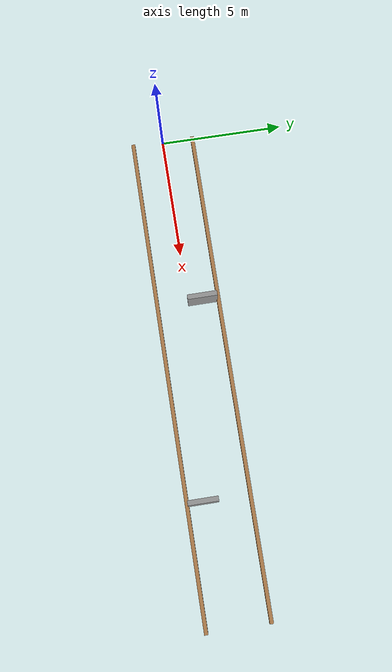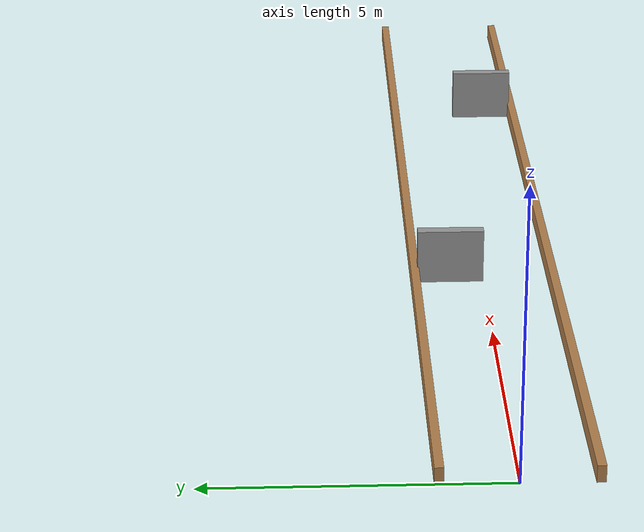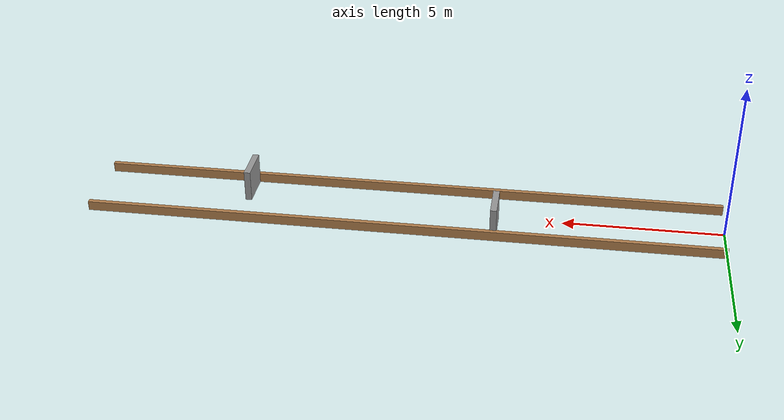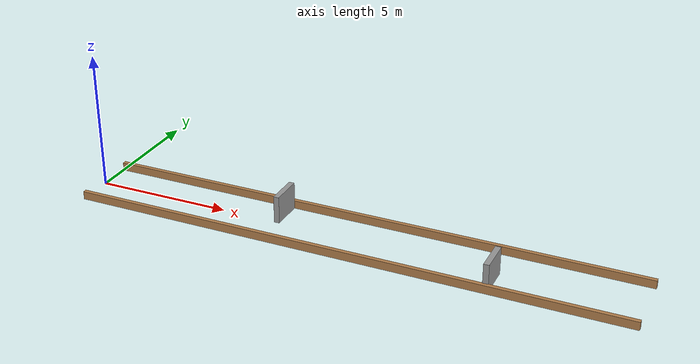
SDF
<sdf version="1.7">
 <world name="default">
  <scene>
   <grid>0</grid>
   <ambient>0.4 0.4 0.4 1</ambient>
   <background>0.7 0.7 0.7 1</background>
   <shadows>1</shadows>
  </scene>
  <light name="sun" type="directional">
   <pose>0 0 10 0 -0 0</pose>
   <diffuse>0.8 0.8 0.8 1</diffuse>
   <specular>0.2 0.2 0.2 1</specular>
   <attenuation>
    <range>1000</range>
    <constant>0.9</constant>
    <linear>0.01</linear>
    <quadratic>0.001</quadratic>
   </attenuation>
   <direction>-0.5 0.1 -0.9</direction>
   <spot><inner_angle>0</inner_angle><outer_angle>0</outer_angle><falloff>0</falloff></spot>
  </light>
  <model name="ground">
   <link name="body">
    <collision name="geom">
     <geometry><plane><normal>0 0 1</normal><size>1 1</size></plane></geometry>
     <surface><friction><ode><mu>100</mu><mu2>50</mu2></ode></friction></surface>
    </collision>
   </link>
   <static>1</static>
  </model>
  <gravity>0 0 -9.8</gravity>
  <magnetic_field>6e-06 2.3e-05 -4.2e-05</magnetic_field>
  <atmosphere type="adiabatic"/>
  <physics type="ode">
   <max_step_size>0.001</max_step_size>
   <real_time_factor>1</real_time_factor>
   <real_time_update_rate>1000</real_time_update_rate>
  </physics>
  <spherical_coordinates>
   <surface_model>EARTH_WGS84</surface_model>
   <latitude_deg>0</latitude_deg>
   <longitude_deg>0</longitude_deg>
   <elevation>0</elevation>
   <heading_deg>0</heading_deg>
  </spherical_coordinates>
  <model name="obstacles">
   <link name="Wall_1">
    <pose>11 -1.6 0 0 -0 0</pose>
    <inertial>
     <mass>1</mass>
     <inertia><ixx>1</ixx><ixy>0</ixy><ixz>0</ixz><iyy>1</iyy><iyz>0</iyz><izz>1</izz></inertia>
    </inertial>
    <visual name="Wall_1_Visual">
     <pose>0 0 0.15 0 -0 0</pose>
     <geometry><box><size>20.03 0.15 0.3</size></box></geometry>
     <material>
      <script><uri>file://media/materials/scripts/gazebo.material</uri><name>Gazebo/Wood</name></script>
      <ambient>1 0.765 0.306 1</ambient>
      <shader type="pixel"><normal_map>__default__</normal_map></shader>
      <diffuse>1 1 1 1</diffuse>
      <specular>0.2 0.2 0.2 1</specular>
      <emissive>0 0 0 1</emissive>
     </material>
     <meta><layer>0</layer></meta>
    </visual>
    <collision name="Wall_1_Collision">
     <pose>0 0 0.15 0 -0 0</pose>
     <geometry><box><size>10 0.15 0.3</size></box></geometry>
     <surface>
      <friction>
       <ode><mu>1</mu><mu2>1</mu2><fdir1>0 0 0</fdir1><slip1>0</slip1><slip2>0</slip2></ode>
       <torsional>
        <coefficient>1</coefficient>
        <patch_radius>0</patch_radius>
        <surface_radius>0</surface_radius>
        <use_patch_radius>1</use_patch_radius>
        <ode><slip>0</slip></ode>
       </torsional>
      </friction>
      <bounce><restitution_coefficient>0</restitution_coefficient><threshold>1e+06</threshold></bounce>
      <contact>
       <collide_without_contact>0</collide_without_contact>
       <collide_without_contact_bitmask>1</collide_without_contact_bitmask>
       <collide_bitmask>1</collide_bitmask>
       <ode>
        <soft_cfm>0</soft_cfm>
        <soft_erp>0.2</soft_erp>
        <kp>1e+13</kp>
        <kd>1</kd>
        <max_vel>0.01</max_vel>
        <min_depth>0</min_depth>
       </ode>
       <bullet>
        <split_impulse>1</split_impulse>
        <split_impulse_penetration_threshold>-0.01</split_impulse_penetration_threshold>
        <soft_cfm>0</soft_cfm>
        <soft_erp>0.2</soft_erp>
        <kp>1e+13</kp>
        <kd>1</kd>
       </bullet>
      </contact>
     </surface>
    </collision>
   </link>
   <link name="Wall_1_clone">
    <pose>11 0.9 0 0 -0 0</pose>
    <inertial>
     <mass>1</mass>
     <inertia><ixx>1</ixx><ixy>0</ixy><ixz>0</ixz><iyy>1</iyy><iyz>0</iyz><izz>1</izz></inertia>
    </inertial>
    <visual name="Wall_1_Visual">
     <pose>0 0 0.15 0 -0 0</pose>
     <geometry><box><size>20 0.15 0.3</size></box></geometry>
     <material>
      <script><uri>file://media/materials/scripts/gazebo.material</uri><name>Gazebo/Wood</name></script>
      <ambient>1 0.765 0.306 1</ambient>
      <shader type="pixel"><normal_map>__default__</normal_map></shader>
      <diffuse>1 1 1 1</diffuse>
      <specular>0.2 0.2 0.2 1</specular>
      <emissive>0 0 0 1</emissive>
     </material>
     <meta><layer>0</layer></meta>
    </visual>
    <collision name="Wall_1_Collision">
     <pose>0 0 0.15 0 -0 0</pose>
     <geometry><box><size>10 0.15 0.3</size></box></geometry>
     <surface>
      <friction>
       <ode><mu>1</mu><mu2>1</mu2><fdir1>0 0 0</fdir1><slip1>0</slip1><slip2>0</slip2></ode>
       <torsional>
        <coefficient>1</coefficient>
        <patch_radius>0</patch_radius>
        <surface_radius>0</surface_radius>
        <use_patch_radius>1</use_patch_radius>
        <ode><slip>0</slip></ode>
       </torsional>
      </friction>
      <bounce><restitution_coefficient>0</restitution_coefficient><threshold>1e+06</threshold></bounce>
      <contact>
       <collide_without_contact>0</collide_without_contact>
       <collide_without_contact_bitmask>1</collide_without_contact_bitmask>
       <collide_bitmask>1</collide_bitmask>
       <ode>
        <soft_cfm>0</soft_cfm>
        <soft_erp>0.2</soft_erp>
        <kp>1e+13</kp>
        <kd>1</kd>
        <max_vel>0.01</max_vel>
        <min_depth>0</min_depth>
       </ode>
       <bullet>
        <split_impulse>1</split_impulse>
        <split_impulse_penetration_threshold>-0.01</split_impulse_penetration_threshold>
        <soft_cfm>0</soft_cfm>
        <soft_erp>0.2</soft_erp>
        <kp>1e+13</kp>
        <kd>1</kd>
       </bullet>
      </contact>
     </surface>
    </collision>
   </link>
   <link name="link_0">
    <inertial>
     <mass>1</mass>
     <inertia>
      <ixx>0.166667</ixx>
      <ixy>0</ixy>
      <ixz>0</ixz>
      <iyy>0.166667</iyy>
      <iyz>0</iyz>
      <izz>0.166667</izz>
     </inertia>
    </inertial>
    <pose>8.1 0.25 0.5 0 -0 0</pose>
    <visual name="visual">
     <geometry><box><size>0.2 1.2 1</size></box></geometry>
     <material>
      <lighting>1</lighting>
      <script><uri>file://media/materials/scripts/gazebo.material</uri><name>Gazebo/Grey</name></script>
      <shader type="pixel"><normal_map>__default__</normal_map></shader>
      <ambient>0.3 0.3 0.3 1</ambient>
      <diffuse>0.7 0.7 0.7 1</diffuse>
      <specular>0.01 0.01 0.01 1</specular>
      <emissive>0 0 0 1</emissive>
     </material>
    </visual>
    <collision name="collision">
     <geometry><box><size>1 1 1</size></box></geometry>
     <surface>
      <friction>
       <ode><mu>1</mu><mu2>1</mu2><fdir1>0 0 0</fdir1><slip1>0</slip1><slip2>0</slip2></ode>
       <torsional>
        <coefficient>1</coefficient>
        <patch_radius>0</patch_radius>
        <surface_radius>0</surface_radius>
        <use_patch_radius>1</use_patch_radius>
        <ode><slip>0</slip></ode>
       </torsional>
      </friction>
      <bounce><restitution_coefficient>0</restitution_coefficient><threshold>1e+06</threshold></bounce>
      <contact>
       <collide_without_contact>0</collide_without_contact>
       <collide_without_contact_bitmask>1</collide_without_contact_bitmask>
       <collide_bitmask>1</collide_bitmask>
       <ode>
        <soft_cfm>0</soft_cfm>
        <soft_erp>0.2</soft_erp>
        <kp>1e+13</kp>
        <kd>1</kd>
        <max_vel>0.01</max_vel>
        <min_depth>0</min_depth>
       </ode>
       <bullet>
        <split_impulse>1</split_impulse>
        <split_impulse_penetration_threshold>-0.01</split_impulse_penetration_threshold>
        <soft_cfm>0</soft_cfm>
        <soft_erp>0.2</soft_erp>
        <kp>1e+13</kp>
        <kd>1</kd>
       </bullet>
      </contact>
     </surface>
    </collision>
   </link>
   <link name="link_0_clone">
    <inertial>
     <mass>1</mass>
     <inertia>
      <ixx>0.166667</ixx>
      <ixy>0</ixy>
      <ixz>0</ixz>
      <iyy>0.166667</iyy>
      <iyz>0</iyz>
      <izz>0.166667</izz>
     </inertia>
    </inertial>
    <pose>16.1 -0.95 0.5 0 -0 0</pose>
    <visual name="visual">
     <geometry><box><size>0.2 1.2 1</size></box></geometry>
     <material>
      <lighting>1</lighting>
      <script><uri>file://media/materials/scripts/gazebo.material</uri><name>Gazebo/Grey</name></script>
      <shader type="pixel"><normal_map>__default__</normal_map></shader>
      <ambient>0.3 0.3 0.3 1</ambient>
      <diffuse>0.7 0.7 0.7 1</diffuse>
      <specular>0.01 0.01 0.01 1</specular>
      <emissive>0 0 0 1</emissive>
     </material>
    </visual>
    <collision name="collision">
     <geometry><box><size>1 1 1</size></box></geometry>
     <surface>
      <friction>
       <ode><mu>1</mu><mu2>1</mu2><fdir1>0 0 0</fdir1><slip1>0</slip1><slip2>0</slip2></ode>
       <torsional>
        <coefficient>1</coefficient>
        <patch_radius>0</patch_radius>
        <surface_radius>0</surface_radius>
        <use_patch_radius>1</use_patch_radius>
        <ode><slip>0</slip></ode>
       </torsional>
      </friction>
      <bounce><restitution_coefficient>0</restitution_coefficient><threshold>1e+06</threshold></bounce>
      <contact>
       <collide_without_contact>0</collide_without_contact>
       <collide_without_contact_bitmask>1</collide_without_contact_bitmask>
       <collide_bitmask>1</collide_bitmask>
       <ode>
        <soft_cfm>0</soft_cfm>
        <soft_erp>0.2</soft_erp>
        <kp>1e+13</kp>
        <kd>1</kd>
        <max_vel>0.01</max_vel>
        <min_depth>0</min_depth>
       </ode>
       <bullet>
        <split_impulse>1</split_impulse>
        <split_impulse_penetration_threshold>-0.01</split_impulse_penetration_threshold>
        <soft_cfm>0</soft_cfm>
        <soft_erp>0.2</soft_erp>
        <kp>1e+13</kp>
        <kd>1</kd>
       </bullet>
      </contact>
     </surface>
    </collision>
   </link>
   <static>1</static>
   <pose>-1 0.35 0 0 -0 0</pose>
  </model>
 </world>
</sdf>
